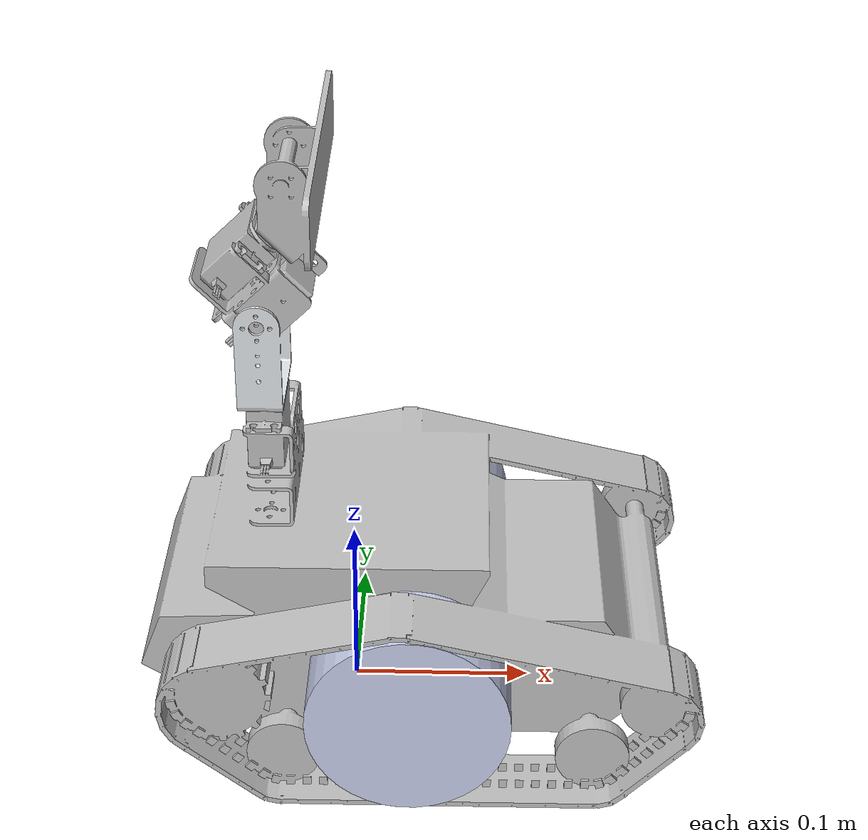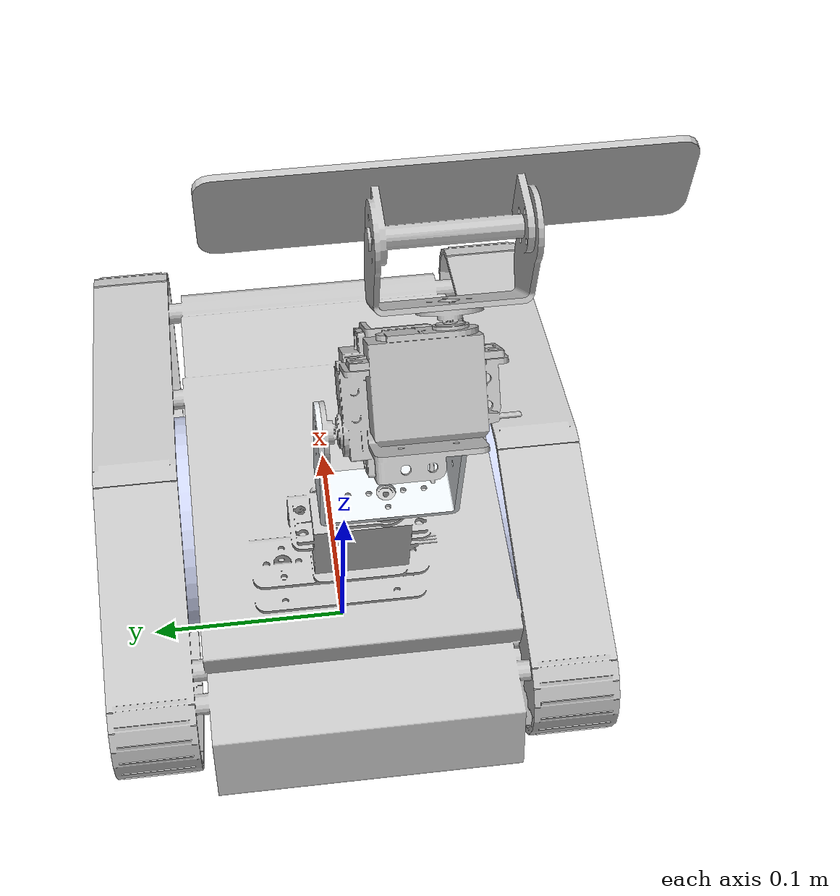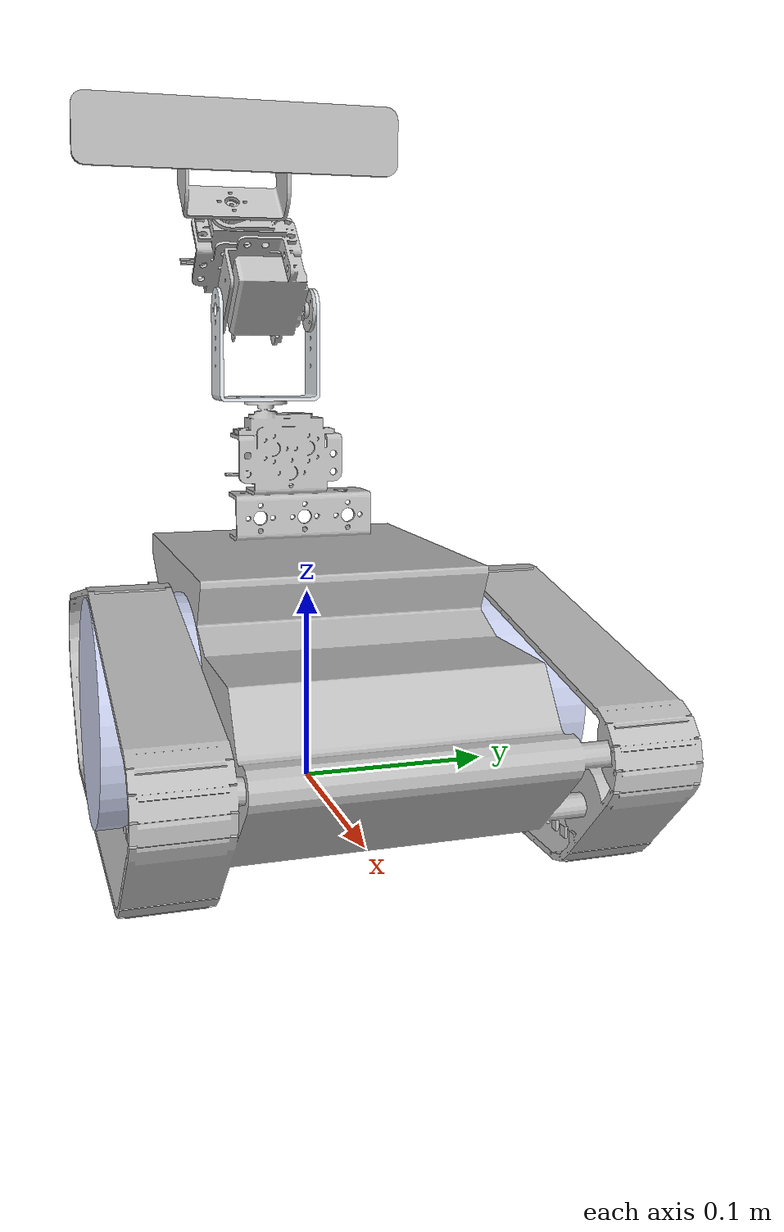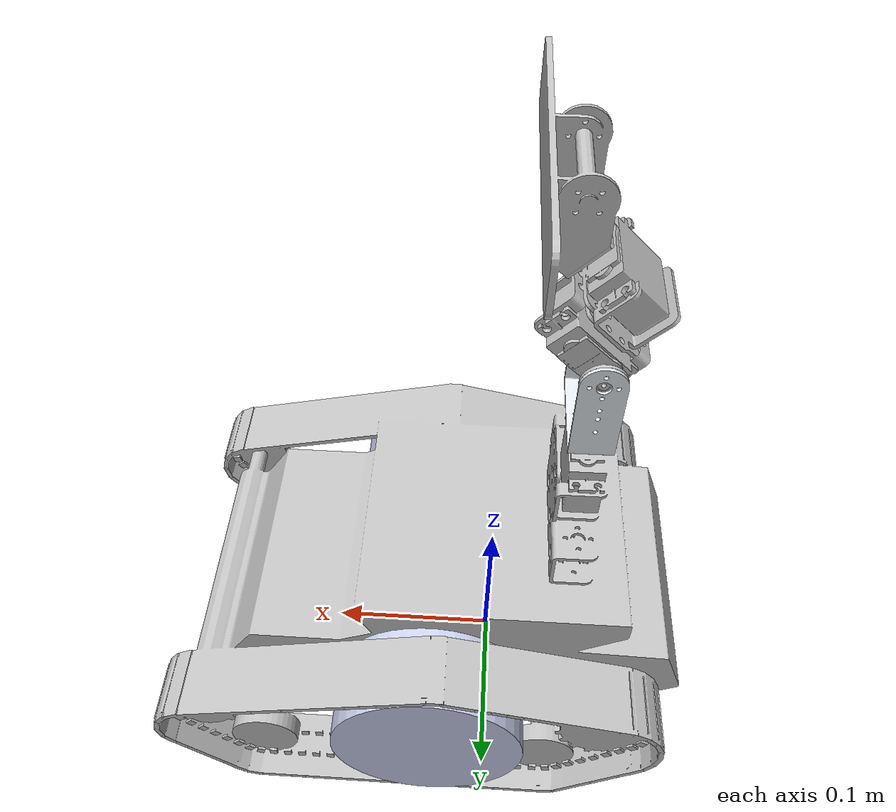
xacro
<?xml version="1.0" encoding="utf-8"?>
<robot
  name="realsense_explorer">

  <material name="invisible">
    <color rgba="0 0 0 0"/>
  </material>

  <link name="base_link"/>

  <link
    name="robot_base">
    <inertial>
      <origin
        xyz="0.0247866171568915 3.22766036766343E-05 0.0646810700535961"
        rpy="0 0 0" />
      <mass
        value="3.84203102747016" />
      <inertia
        ixx="0.00832697034159198"
        ixy="4.47561922410032E-12"
        ixz="0.00131003051811743"
        iyy="0.0186966345588519"
        iyz="-1.25426580474583E-09"
        izz="0.021532258688866" />
    </inertial>
    <visual>
      <origin
        xyz="0 0 0"
        rpy="0 0 0" />
      <geometry>
        <mesh
          filename="package://realsense_explorer_description/meshes/robot_base.STL" />
      </geometry>
      <material
        name="">
        <color
          rgba="0.752941176470588 0.752941176470588 0.752941176470588 1" />
      </material>
    </visual>
    <collision>
      <origin
        xyz="0 0 0"
        rpy="0 0 0" />
      <geometry>
        <mesh
          filename="package://realsense_explorer_description/meshes/robot_base.STL" />
      </geometry>
    </collision>
  </link>
    <joint name="base_joint" type="fixed">
        <origin rpy="0 0 0" xyz="0 0 0" />
        <parent link="base_link"/>
        <child link="robot_base" />
    </joint>
  <link
    name="left_wheel_link">
    <inertial>
      <origin
        xyz="0 0 0.0235"
        rpy="0 0 0" />
      <mass
        value="0.446655935524129" />
      <inertia
        ixx="0.000420005464704522"
        ixy="-3.26265223399926E-52"
        ixz="-1.06161462722539E-20"
        iyy="0.000420005464704522"
        iyz="1.11561924116082E-36"
        izz="0.000675567102480245" />
    </inertial>
    <visual>
      <origin
        xyz="0 0 0"
        rpy="0 0 0" />
      <geometry>
        <mesh
          filename="package://realsense_explorer_description/meshes/left_wheel_link.STL" />
      </geometry>
      <material
        name="invisible">
        <color
          rgba="0.792156862745098 0.819607843137255 0.933333333333333 1" />
      </material>
    </visual>
    <collision>
      <origin
        xyz="0 0 0"
        rpy="0 0 0" />
      <geometry>
        <mesh
          filename="package://realsense_explorer_description/meshes/left_wheel_link.STL" />
      </geometry>
    </collision>
  </link>
  <joint
    name="left_wheel_joint"
    type="continuous">
    <origin
      xyz="0.033161 0.07075 0.054"
      rpy="-1.5708 0 0" />
    <parent
      link="robot_base" />
    <child
      link="left_wheel_link" />
    <axis
      xyz="0 0 1" />
  </joint>
  <link
    name="right_wheel_link">
    <inertial>
      <origin
        xyz="0 0 -0.0235"
        rpy="0 0 0" />
      <mass
        value="0.446655935524129" />
      <inertia
        ixx="0.000420005464704522"
        ixy="-3.26265223399926E-52"
        ixz="-1.06161462722539E-20"
        iyy="0.000420005464704522"
        iyz="1.11561924116082E-36"
        izz="0.000675567102480245" />
    </inertial>
    <visual>
      <origin
        xyz="0 0 0"
        rpy="0 0 0" />
      <geometry>
        <mesh
          filename="package://realsense_explorer_description/meshes/right_wheel_link.STL" />
      </geometry>
      <material
        name="invisible">
        <color
          rgba="0.792156862745098 0.819607843137255 0.933333333333333 1" />
      </material>
    </visual>
    <collision>
      <origin
        xyz="0 0 0"
        rpy="0 0 0" />
      <geometry>
        <mesh
          filename="package://realsense_explorer_description/meshes/right_wheel_link.STL" />
      </geometry>
    </collision>
  </link>
  <joint
    name="right_wheel_joint"
    type="continuous">
    <origin
      xyz="0.033161 -0.07075 0.054"
      rpy="-1.5708 0 0" />
    <parent
      link="robot_base" />
    <child
      link="right_wheel_link" />
    <axis
      xyz="0 0 1" />
  </joint>
  <link
    name="long_u_link">
    <inertial>
      <origin
        xyz="1.04083408558608E-17 0 0.0205440035698287"
        rpy="0 0 0" />
      <mass
        value="0.0213372016014766" />
      <inertia
        ixx="8.87215657604868E-06"
        ixy="-3.5968996524586E-21"
        ixz="5.11806467439558E-21"
        iyy="2.01646770189564E-05"
        iyz="-1.25110558281444E-22"
        izz="1.3390588906091E-05" />
    </inertial>
    <visual>
      <origin
        xyz="0 0 0"
        rpy="0 0 0" />
      <geometry>
        <mesh
          filename="package://realsense_explorer_description/meshes/long_u_link.STL" />
      </geometry>
      <material
        name="">
        <color
          rgba="0.894117647058823 0.913725490196078 0.929411764705882 1" />
      </material>
    </visual>
    <collision>
      <origin
        xyz="0 0 0"
        rpy="0 0 0" />
      <geometry>
        <mesh
          filename="package://realsense_explorer_description/meshes/long_u_link.STL" />
      </geometry>
    </collision>
  </link>
  <joint
    name="long_u_joint"
    type="revolute">
    <limit effort="1000.0" lower="-1.57" upper="1.57" velocity="0.5"/>
    <origin
      xyz="-0.0457291882084462 -0.01125 0.19927"
      rpy="0 0 1.5707963267949" />
    <parent
      link="robot_base" />
    <child
      link="long_u_link" />
    <axis
      xyz="0 0 1" />
  </joint>
  <link
    name="mid_servo_link">
    <inertial>
      <origin
        xyz="0.0206950255653857 -0.00148887965651644 -0.0074191311439981"
        rpy="0 0 0" />
      <mass
        value="0.0977262710445392" />
      <inertia
        ixx="2.5585434216447E-05"
        ixy="-5.48531531884796E-06"
        ixz="-3.77958554472537E-07"
        iyy="2.46548685888374E-05"
        iyz="3.79255142396952E-07"
        izz="1.96412380524076E-05" />
    </inertial>
    <visual>
      <origin
        xyz="0 0 0"
        rpy="0 0 0" />
      <geometry>
        <mesh
          filename="package://realsense_explorer_description/meshes/mid_servo_link.STL" />
      </geometry>
      <material
        name="">
        <color
          rgba="0.752941176470588 0.752941176470588 0.752941176470588 1" />
      </material>
    </visual>
    <collision>
      <origin
        xyz="0 0 0"
        rpy="0 0 0" />
      <geometry>
        <mesh
          filename="package://realsense_explorer_description/meshes/mid_servo_link.STL" />
      </geometry>
    </collision>
  </link>
  <joint
    name="mid_link_joint"
    type="revolute">
    <limit effort="1000.0" lower="-1.57" upper="1.57" velocity="0.5"/>
    <origin
      xyz="0 0 0.05"
      rpy="-1.5707963267949 -1.54960030838858 -1.57079632679489" />
    <parent
      link="long_u_link" />
    <child
      link="mid_servo_link" />
    <axis
      xyz="0 0 1" />
  </joint>
  <link
    name="camera_mount_link">
    <inertial>
      <origin
        xyz="9.06672541775219E-05 0.00853665622876829 0.0504788010831074"
        rpy="0 0 0" />
      <mass
        value="0.0417767995564032" />
      <inertia
        ixx="7.94486504284408E-06"
        ixy="5.605335588391E-07"
        ixz="-2.25400365544574E-08"
        iyy="6.07757903441138E-05"
        iyz="-2.12981494312466E-06"
        izz="6.05901775986386E-05" />
    </inertial>
    <visual>
      <origin
        xyz="0 0 0"
        rpy="0 0 0" />
      <geometry>
        <mesh
          filename="package://realsense_explorer_description/meshes/camera_mount_link.STL" />
      </geometry>
      <material
        name="">
        <color
          rgba="0.752941176470588 0.752941176470588 0.752941176470588 1" />
      </material>
    </visual>
    <collision>
      <origin
        xyz="0 0 0"
        rpy="0 0 0" />
      <geometry>
        <mesh
          filename="package://realsense_explorer_description/meshes/camera_mount_link.STL" />
      </geometry>
    </collision>
  </link>
  <joint
    name="camera_mount_joint"
    type="revolute">
    <limit effort="1000.0" lower="-1.57" upper="1.57" velocity="0.5"/>
    <origin
      xyz="0.0378975953962198 -0.00642581350278899 -0.0210000000000001"
      rpy="-1.57079632679501 -1.56018827190785 -0.791795520542192" />
    <parent
      link="mid_servo_link" />
    <child
      link="camera_mount_link" />
    <axis
      xyz="0 0 1" />
  </joint>

  <link name="imu_link">
    <visual>
      <geometry>
        <box size="0.015 0.026 0.001"/>
      </geometry>
      <material name="green"/>
    </visual>
  </link>

<joint name="imu_joint" type="fixed">
  <origin rpy="0 0 0" xyz="0.114 0 0.05"/>
  <child link="imu_link" />
  <parent link="robot_base"/>
</joint>

</robot>
